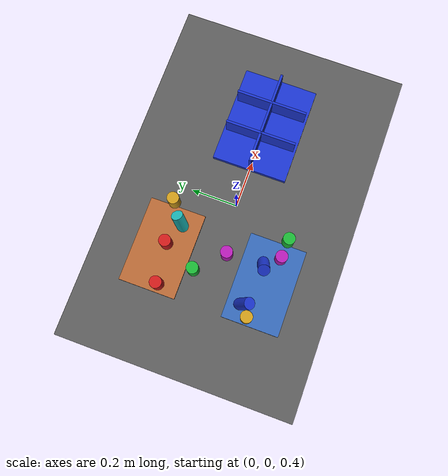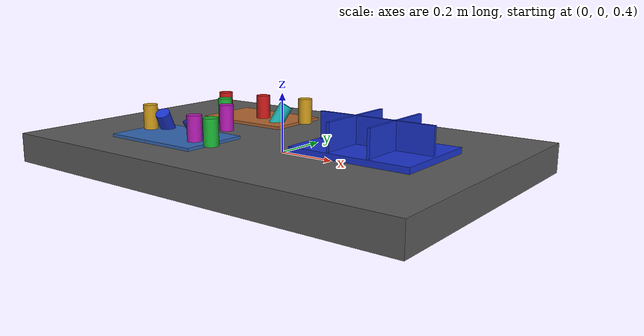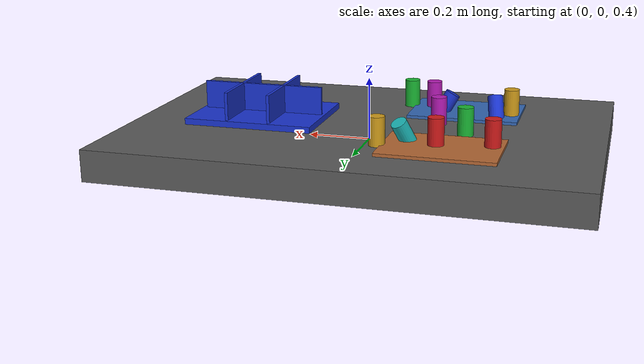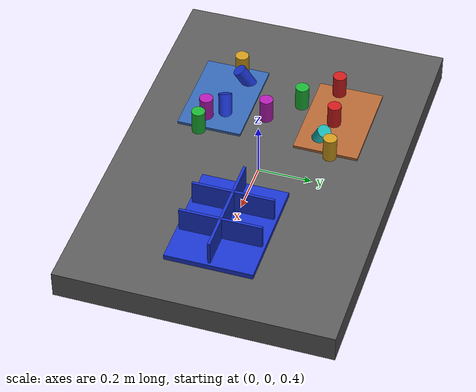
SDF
<?xml version="1.0" ?>
<sdf version="1.9">
  <!-- Standalone M1B scene.  The controller-backed Panda is spawned by the
       existing launch path; this file never alters the frozen M1A cube world. -->
  <world name="industrial_cylinder_v1">
    <physics name="bullet" type="bullet"><max_step_size>0.001</max_step_size><real_time_factor>1.0</real_time_factor></physics>
    <plugin name="gz::sim::systems::Physics" filename="gz-sim-physics-system"><engine><filename>gz-physics-bullet-featherstone-plugin</filename></engine></plugin>
    <plugin name="gz::sim::systems::UserCommands" filename="gz-sim-user-commands-system"/>
    <plugin name="gz::sim::systems::SceneBroadcaster" filename="gz-sim-scene-broadcaster-system"/>
    <plugin name="gz::sim::systems::Sensors" filename="gz-sim-sensors-system"><render_engine>ogre2</render_engine></plugin>
    <gravity>0 0 -9.81</gravity>
    <light type="directional" name="industrial_light"><pose>0 0 5 0 0 0</pose><direction>-0.3 0.2 -0.9</direction><diffuse>0.9 0.9 0.9 1</diffuse></light>
    <model name="industrial_work_table"><static>true</static><link name="link"><pose>0 0 0.4 0 0 0</pose><collision name="collision"><geometry><box><size>1.5 1.0 0.1</size></box></geometry></collision><visual name="visual"><geometry><box><size>1.5 1.0 0.1</size></box></geometry><material><diffuse>0.35 0.35 0.35 1</diffuse></material></visual></link></model>
    <model name="camera_fixture"><static>true</static><link name="camera_rgbd"><pose>-0.80 -0.80 1.40 0 0.77 0.93</pose><sensor name="front_rgbd" type="rgbd_camera"><always_on>1</always_on><update_rate>15</update_rate><topic>/xh/camera/rgbd</topic><camera><horizontal_fov>1.047</horizontal_fov><image><width>640</width><height>480</height><format>R8G8B8</format></image><clip><near>0.1</near><far>4.0</far></clip></camera></sensor></link></model>
    <model name="incoming_zone_a"><static>true</static><link name="link"><pose>-0.28 -0.22 0.455 0 0 0</pose><visual name="visual"><geometry><box><size>0.36 0.24 0.01</size></box></geometry><material><diffuse>0.2 0.4 0.7 1</diffuse></material></visual></link></model>
    <model name="incoming_zone_b"><static>true</static><link name="link"><pose>-0.28 0.22 0.455 0 0 0</pose><visual name="visual"><geometry><box><size>0.36 0.24 0.01</size></box></geometry><material><diffuse>0.7 0.4 0.2 1</diffuse></material></visual></link></model>
    <!-- M1B_RANDOM_PARTS_BEGIN -->
    <model name="cylinder_01"><pose>-0.2594 0.2087 0.5000 0.0000 0.0000 0.7715</pose><link name="link"><inertial><mass>0.06</mass></inertial><collision name="collision"><geometry><cylinder><radius>0.025</radius><length>0.09</length></cylinder></geometry></collision><visual name="visual"><geometry><cylinder><radius>0.025</radius><length>0.09</length></cylinder></geometry><material><diffuse>0.800 0.100 0.100 1</diffuse><specular>0.15 0.15 0.15 1</specular></material></visual></link></model>
    <model name="cylinder_02"><pose>-0.0851 -0.2531 0.5000 3.1416 0.0000 -1.1436</pose><link name="link"><inertial><mass>0.06</mass></inertial><collision name="collision"><geometry><cylinder><radius>0.025</radius><length>0.09</length></cylinder></geometry></collision><visual name="visual"><geometry><cylinder><radius>0.025</radius><length>0.09</length></cylinder></geometry><material><diffuse>0.100 0.700 0.200 1</diffuse><specular>0.15 0.15 0.15 1</specular></material></visual></link></model>
    <model name="cylinder_03"><pose>-0.3832 -0.1685 0.4800 0.4500 -0.3000 0.8451</pose><link name="link"><inertial><mass>0.06</mass></inertial><collision name="collision"><geometry><cylinder><radius>0.025</radius><length>0.09</length></cylinder></geometry></collision><visual name="visual"><geometry><cylinder><radius>0.025</radius><length>0.09</length></cylinder></geometry><material><diffuse>0.100 0.200 0.800 1</diffuse><specular>0.15 0.15 0.15 1</specular></material></visual></link></model>
    <model name="cylinder_04"><pose>-0.0871 0.2410 0.5000 0.0000 0.0000 -2.2788</pose><link name="link"><inertial><mass>0.06</mass></inertial><collision name="collision"><geometry><cylinder><radius>0.025</radius><length>0.09</length></cylinder></geometry></collision><visual name="visual"><geometry><cylinder><radius>0.025</radius><length>0.09</length></cylinder></geometry><material><diffuse>0.800 0.600 0.100 1</diffuse><specular>0.15 0.15 0.15 1</specular></material></visual></link></model>
    <model name="cylinder_05"><pose>-0.2192 -0.0376 0.5000 3.1416 0.0000 1.1753</pose><link name="link"><inertial><mass>0.06</mass></inertial><collision name="collision"><geometry><cylinder><radius>0.025</radius><length>0.09</length></cylinder></geometry></collision><visual name="visual"><geometry><cylinder><radius>0.025</radius><length>0.09</length></cylinder></geometry><material><diffuse>0.700 0.100 0.700 1</diffuse><specular>0.15 0.15 0.15 1</specular></material></visual></link></model>
    <model name="cylinder_06"><pose>-0.1597 0.1862 0.4800 0.4500 -0.3000 2.9807</pose><link name="link"><inertial><mass>0.06</mass></inertial><collision name="collision"><geometry><cylinder><radius>0.025</radius><length>0.09</length></cylinder></geometry></collision><visual name="visual"><geometry><cylinder><radius>0.025</radius><length>0.09</length></cylinder></geometry><material><diffuse>0.100 0.700 0.700 1</diffuse><specular>0.15 0.15 0.15 1</specular></material></visual></link></model>
    <model name="cylinder_07"><pose>-0.4249 0.1826 0.5000 0.0000 0.0000 -2.5765</pose><link name="link"><inertial><mass>0.06</mass></inertial><collision name="collision"><geometry><cylinder><radius>0.025</radius><length>0.09</length></cylinder></geometry></collision><visual name="visual"><geometry><cylinder><radius>0.025</radius><length>0.09</length></cylinder></geometry><material><diffuse>0.800 0.100 0.100 1</diffuse><specular>0.15 0.15 0.15 1</specular></material></visual></link></model>
    <model name="cylinder_08"><pose>-0.3234 0.0681 0.5000 3.1416 0.0000 -1.0782</pose><link name="link"><inertial><mass>0.06</mass></inertial><collision name="collision"><geometry><cylinder><radius>0.025</radius><length>0.09</length></cylinder></geometry></collision><visual name="visual"><geometry><cylinder><radius>0.025</radius><length>0.09</length></cylinder></geometry><material><diffuse>0.100 0.700 0.200 1</diffuse><specular>0.15 0.15 0.15 1</specular></material></visual></link></model>
    <model name="cylinder_09"><pose>-0.2131 -0.1927 0.4800 0.4500 -0.3000 -0.6924</pose><link name="link"><inertial><mass>0.06</mass></inertial><collision name="collision"><geometry><cylinder><radius>0.025</radius><length>0.09</length></cylinder></geometry></collision><visual name="visual"><geometry><cylinder><radius>0.025</radius><length>0.09</length></cylinder></geometry><material><diffuse>0.100 0.200 0.800 1</diffuse><specular>0.15 0.15 0.15 1</specular></material></visual></link></model>
    <model name="cylinder_10"><pose>-0.4298 -0.1965 0.5000 0.0000 0.0000 -2.3567</pose><link name="link"><inertial><mass>0.06</mass></inertial><collision name="collision"><geometry><cylinder><radius>0.025</radius><length>0.09</length></cylinder></geometry></collision><visual name="visual"><geometry><cylinder><radius>0.025</radius><length>0.09</length></cylinder></geometry><material><diffuse>0.800 0.600 0.100 1</diffuse><specular>0.15 0.15 0.15 1</specular></material></visual></link></model>
    <model name="cylinder_11"><pose>-0.1621 -0.2485 0.5000 3.1416 0.0000 -0.2137</pose><link name="link"><inertial><mass>0.06</mass></inertial><collision name="collision"><geometry><cylinder><radius>0.025</radius><length>0.09</length></cylinder></geometry></collision><visual name="visual"><geometry><cylinder><radius>0.025</radius><length>0.09</length></cylinder></geometry><material><diffuse>0.700 0.100 0.700 1</diffuse><specular>0.15 0.15 0.15 1</specular></material></visual></link></model>
    <!-- M1B_RANDOM_PARTS_END -->
    <model name="blue_partition_bin"><static>true</static><pose>0.36 0 0.45 0 0 0</pose><link name="link"><collision name="floor"><pose>0 0 0.01 0 0 0</pose><geometry><box><size>0.42 0.32 0.02</size></box></geometry></collision><visual name="floor_visual"><pose>0 0 0.01 0 0 0</pose><geometry><box><size>0.42 0.32 0.02</size></box></geometry><material><diffuse>0.1 0.2 0.8 1</diffuse></material></visual><visual name="row_divider"><pose>0 0 0.06 0 0 0</pose><geometry><box><size>0.40 0.01 0.10</size></box></geometry><material><diffuse>0.1 0.2 0.8 1</diffuse></material></visual><visual name="col_divider_a"><pose>-0.07 0 0.06 0 0 0</pose><geometry><box><size>0.01 0.30 0.10</size></box></geometry><material><diffuse>0.1 0.2 0.8 1</diffuse></material></visual><visual name="col_divider_b"><pose>0.07 0 0.06 0 0 0</pose><geometry><box><size>0.01 0.30 0.10</size></box></geometry><material><diffuse>0.1 0.2 0.8 1</diffuse></material></visual></link></model>
    <!-- Reserved only: second table, bin transport corridor, stackable-bin
         collision volume, and second arm mounting namespace. -->
  </world>
</sdf>
